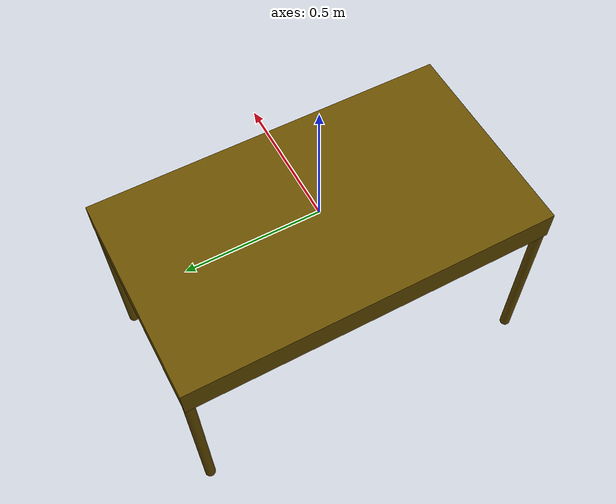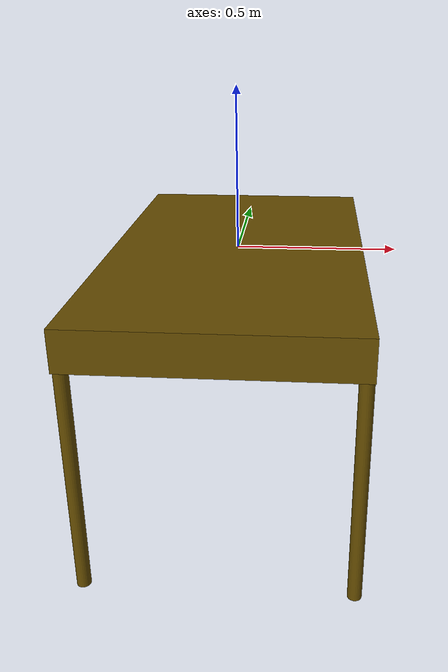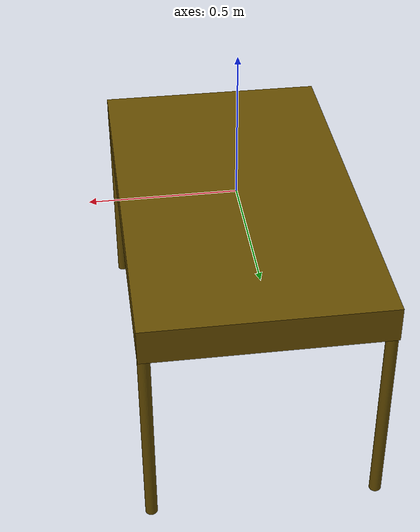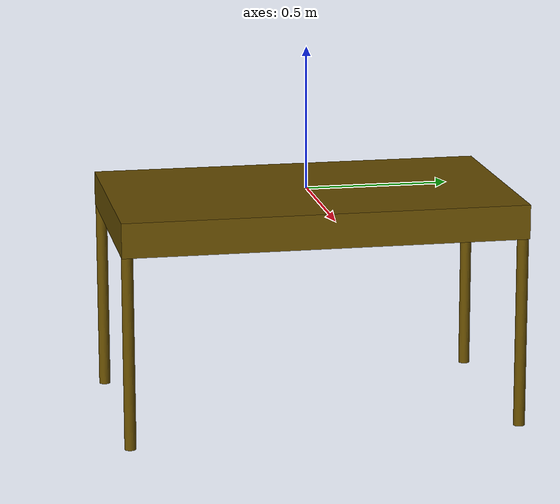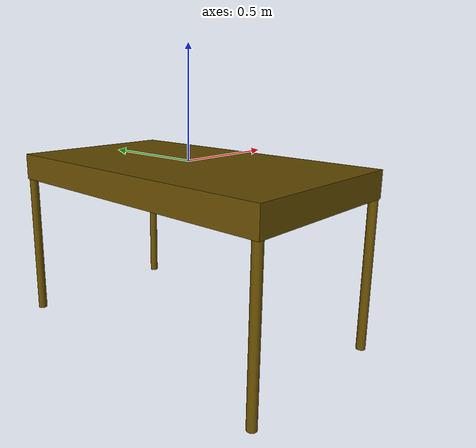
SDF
<sdf version="1.6">
    <model name='victor_table'>
        <static>1</static>
        <allow_auto_disable>true</allow_auto_disable>
        <link name='surface'>
            <kinematic>true</kinematic>
            <collision name='surface'>
                <pose frame=''>0 0 -0.06 0 -0 0</pose>
                <geometry>
                    <box>
                        <size>0.8 1.5 0.12</size>
                    </box>
                </geometry>
                <surface>
                    <friction>
                        <ode>
                            <mu>0.6</mu>
                            <mu2>0.6</mu2>
                        </ode>
                    </friction>
                </surface>
            </collision>
            <visual name='visual1'>
                <pose frame=''>0 0 -0.06 0 -0 0</pose>
                <geometry>
                    <box>
                        <size>0.8 1.4 0.12</size>
                    </box>
                </geometry>
                <material>
                    <ambient>0.4 0.3 0.0 1.0</ambient>
                    <diffuse>0.4 0.3 0.0 1.0</diffuse>
                </material>
            </visual>
        </link>
        <link name='legs'>
            <pose frame=''>0 0 -0.79 0 -0 0</pose>
            <kinematic>true</kinematic>
            <collision name='front_left_leg'>
                <pose frame=''>0.38 0.68 0.375 0 -0 0</pose>
                <geometry>
                    <cylinder>
                        <radius>0.02</radius>
                        <length>0.75</length>
                    </cylinder>
                </geometry>
            </collision>
            <visual name='front_left_leg'>
                <pose frame=''>0.38 0.68 0.375 0 -0 0</pose>
                <geometry>
                    <cylinder>
                        <radius>0.02</radius>
                        <length>0.75</length>
                    </cylinder>
                </geometry>
                <material>
                    <ambient>0.4 0.3 0.0 1.0</ambient>
                    <diffuse>0.4 0.3 0.0 1.0</diffuse>
                </material>
            </visual>
            <collision name='front_right_leg'>
                <pose frame=''>-0.38 0.68 0.375 0 -0 0</pose>
                <geometry>
                    <cylinder>
                        <radius>0.02</radius>
                        <length>0.75</length>
                    </cylinder>
                </geometry>
            </collision>
            <visual name='front_right_leg'>
                <pose frame=''>-0.38 0.68 0.375 0 -0 0</pose>
                <geometry>
                    <cylinder>
                        <radius>0.02</radius>
                        <length>0.75</length>
                    </cylinder>
                </geometry>
                <material>
                    <ambient>0.4 0.3 0.0 1.0</ambient>
                    <diffuse>0.4 0.3 0.0 1.0</diffuse>
                </material>
            </visual>
            <collision name='back_right_leg'>
                <pose frame=''>-0.38 -0.68 0.375 0 -0 0</pose>
                <geometry>
                    <cylinder>
                        <radius>0.02</radius>
                        <length>0.75</length>
                    </cylinder>
                </geometry>
            </collision>
            <visual name='back_right_leg'>
                <pose frame=''>-0.38 -0.68 0.375 0 -0 0</pose>
                <geometry>
                    <cylinder>
                        <radius>0.02</radius>
                        <length>0.75</length>
                    </cylinder>
                </geometry>
                <material>
                    <ambient>0.4 0.3 0.0 1.0</ambient>
                    <diffuse>0.4 0.3 0.0 1.0</diffuse>
                </material>
            </visual>
            <collision name='back_left_leg'>
                <pose frame=''>0.38 -0.68 0.375 0 -0 0</pose>
                <geometry>
                    <cylinder>
                        <radius>0.02</radius>
                        <length>0.75</length>
                    </cylinder>
                </geometry>
            </collision>
            <visual name='back_left_leg'>
                <pose frame=''>0.38 -0.68 0.375 0 -0 0</pose>
                <geometry>
                    <cylinder>
                        <radius>0.02</radius>
                        <length>0.75</length>
                    </cylinder>
                </geometry>
                <material>
                    <ambient>0.4 0.3 0.0 1.0</ambient>
                    <diffuse>0.4 0.3 0.0 1.0</diffuse>
                </material>
            </visual>
            <self_collide>0</self_collide>
            <inertial>
                <inertia>
                    <ixx>1</ixx>
                    <ixy>0</ixy>
                    <ixz>0</ixz>
                    <iyy>1</iyy>
                    <iyz>0</iyz>
                    <izz>1</izz>
                </inertia>
                <mass>1</mass>
            </inertial>
        </link>
    </model>
</sdf>
